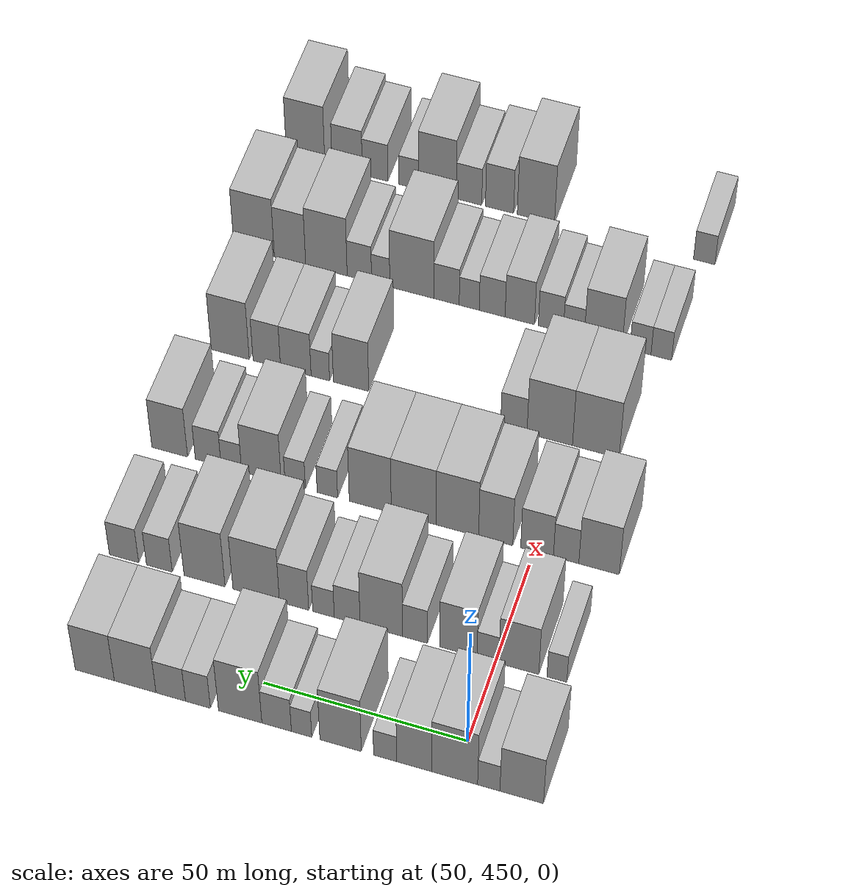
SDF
<sdf version="1.6">
 <world name="default">
  <model name="building_109">
   <static>1</static>
   <pose>50.0000 434.0312 0 0.000000 0.000000 0.000000</pose>
   <link name="link">
    <pose>0 0 10.50 0 0 0</pose>
    <collision name="collision"><geometry><box><size>20.0000 10.4362 21.0000</size></box></geometry></collision>
    <visual name="visual">
     <cast_shadows>0</cast_shadows>
     <geometry><box><size>20.0000 10.4362 21.0000</size></box></geometry>
     <material>
      <script>
       <uri>model://HANNAS_wall/materials/scripts</uri>
       <uri>model://HANNAS_wall/materials/textures</uri>
       <name>vrc/HANNAS_wall</name>
      </script>
     </material>
    </visual>
   </link>
  </model>
  <model name="building_110">
   <static>1</static>
   <pose>50.0000 441.9292 0 0.000000 0.000000 0.000000</pose>
   <link name="link">
    <pose>0 0 6.00 0 0 0</pose>
    <collision name="collision"><geometry><box><size>20.0000 5.3597 12.0000</size></box></geometry></collision>
    <visual name="visual">
     <cast_shadows>0</cast_shadows>
     <geometry><box><size>20.0000 5.3597 12.0000</size></box></geometry>
     <material>
      <script>
       <uri>model://HANNAS_wall/materials/scripts</uri>
       <uri>model://HANNAS_wall/materials/textures</uri>
       <name>vrc/HANNAS_wall</name>
      </script>
     </material>
    </visual>
   </link>
  </model>
  <model name="building_111">
   <static>1</static>
   <pose>50.0000 450.1732 0 0.000000 0.000000 0.000000</pose>
   <link name="link">
    <pose>0 0 12.00 0 0 0</pose>
    <collision name="collision"><geometry><box><size>20.0000 11.1282 24.0000</size></box></geometry></collision>
    <visual name="visual">
     <cast_shadows>0</cast_shadows>
     <geometry><box><size>20.0000 11.1282 24.0000</size></box></geometry>
     <material>
      <script>
       <uri>model://HANNAS_wall/materials/scripts</uri>
       <uri>model://HANNAS_wall/materials/textures</uri>
       <name>vrc/HANNAS_wall</name>
      </script>
     </material>
    </visual>
   </link>
  </model>
  <model name="building_112">
   <static>1</static>
   <pose>50.0000 459.9587 0 0.000000 0.000000 0.000000</pose>
   <link name="link">
    <pose>0 0 10.50 0 0 0</pose>
    <collision name="collision"><geometry><box><size>20.0000 8.4429 21.0000</size></box></geometry></collision>
    <visual name="visual">
     <cast_shadows>0</cast_shadows>
     <geometry><box><size>20.0000 8.4429 21.0000</size></box></geometry>
     <material>
      <script>
       <uri>model://HANNAS_wall/materials/scripts</uri>
       <uri>model://HANNAS_wall/materials/textures</uri>
       <name>vrc/HANNAS_wall</name>
      </script>
     </material>
    </visual>
   </link>
  </model>
  <model name="building_113">
   <static>1</static>
   <pose>50.0000 466.9734 0 0.000000 0.000000 0.000000</pose>
   <link name="link">
    <pose>0 0 6.00 0 0 0</pose>
    <collision name="collision"><geometry><box><size>20.0000 5.5864 12.0000</size></box></geometry></collision>
    <visual name="visual">
     <cast_shadows>0</cast_shadows>
     <geometry><box><size>20.0000 5.5864 12.0000</size></box></geometry>
     <material>
      <script>
       <uri>model://HANNAS_wall/materials/scripts</uri>
       <uri>model://HANNAS_wall/materials/textures</uri>
       <name>vrc/HANNAS_wall</name>
      </script>
     </material>
    </visual>
   </link>
  </model>
  <model name="building_114">
   <static>1</static>
   <pose>50.0000 477.8164 0 0.000000 0.000000 0.000000</pose>
   <link name="link">
    <pose>0 0 12.00 0 0 0</pose>
    <collision name="collision"><geometry><box><size>20.0000 10.0997 24.0000</size></box></geometry></collision>
    <visual name="visual">
     <cast_shadows>0</cast_shadows>
     <geometry><box><size>20.0000 10.0997 24.0000</size></box></geometry>
     <material>
      <script>
       <uri>model://HANNAS_wall/materials/scripts</uri>
       <uri>model://HANNAS_wall/materials/textures</uri>
       <name>vrc/HANNAS_wall</name>
      </script>
     </material>
    </visual>
   </link>
  </model>
  <model name="building_115">
   <static>1</static>
   <pose>50.0000 487.3598 0 0.000000 0.000000 0.000000</pose>
   <link name="link">
    <pose>0 0 6.00 0 0 0</pose>
    <collision name="collision"><geometry><box><size>20.0000 4.9869 12.0000</size></box></geometry></collision>
    <visual name="visual">
     <cast_shadows>0</cast_shadows>
     <geometry><box><size>20.0000 4.9869 12.0000</size></box></geometry>
     <material>
      <script>
       <uri>model://HANNAS_wall/materials/scripts</uri>
       <uri>model://HANNAS_wall/materials/textures</uri>
       <name>vrc/HANNAS_wall</name>
      </script>
     </material>
    </visual>
   </link>
  </model>
  <model name="building_116">
   <static>1</static>
   <pose>50.0000 493.4855 0 0.000000 0.000000 0.000000</pose>
   <link name="link">
    <pose>0 0 7.50 0 0 0</pose>
    <collision name="collision"><geometry><box><size>20.0000 7.2645 15.0000</size></box></geometry></collision>
    <visual name="visual">
     <cast_shadows>0</cast_shadows>
     <geometry><box><size>20.0000 7.2645 15.0000</size></box></geometry>
     <material>
      <script>
       <uri>model://HANNAS_wall/materials/scripts</uri>
       <uri>model://HANNAS_wall/materials/textures</uri>
       <name>vrc/HANNAS_wall</name>
      </script>
     </material>
    </visual>
   </link>
  </model>
  <model name="building_117">
   <static>1</static>
   <pose>50.0000 502.4679 0 0.000000 0.000000 0.000000</pose>
   <link name="link">
    <pose>0 0 12.00 0 0 0</pose>
    <collision name="collision"><geometry><box><size>20.0000 10.7004 24.0000</size></box></geometry></collision>
    <visual name="visual">
     <cast_shadows>0</cast_shadows>
     <geometry><box><size>20.0000 10.7004 24.0000</size></box></geometry>
     <material>
      <script>
       <uri>model://HANNAS_wall/materials/scripts</uri>
       <uri>model://HANNAS_wall/materials/textures</uri>
       <name>vrc/HANNAS_wall</name>
      </script>
     </material>
    </visual>
   </link>
  </model>
  <model name="building_118">
   <static>1</static>
   <pose>50.0000 512.9124 0 0.000000 0.000000 0.000000</pose>
   <link name="link">
    <pose>0 0 7.50 0 0 0</pose>
    <collision name="collision"><geometry><box><size>20.0000 6.1886 15.0000</size></box></geometry></collision>
    <visual name="visual">
     <cast_shadows>0</cast_shadows>
     <geometry><box><size>20.0000 6.1886 15.0000</size></box></geometry>
     <material>
      <script>
       <uri>model://HANNAS_wall/materials/scripts</uri>
       <uri>model://HANNAS_wall/materials/textures</uri>
       <name>vrc/HANNAS_wall</name>
      </script>
     </material>
    </visual>
   </link>
  </model>
  <model name="building_119">
   <static>1</static>
   <pose>50.0000 519.6752 0 0.000000 0.000000 0.000000</pose>
   <link name="link">
    <pose>0 0 7.50 0 0 0</pose>
    <collision name="collision"><geometry><box><size>20.0000 7.3370 15.0000</size></box></geometry></collision>
    <visual name="visual">
     <cast_shadows>0</cast_shadows>
     <geometry><box><size>20.0000 7.3370 15.0000</size></box></geometry>
     <material>
      <script>
       <uri>model://HANNAS_wall/materials/scripts</uri>
       <uri>model://HANNAS_wall/materials/textures</uri>
       <name>vrc/HANNAS_wall</name>
      </script>
     </material>
    </visual>
   </link>
  </model>
  <model name="building_120">
   <static>1</static>
   <pose>50.0000 528.5425 0 0.000000 0.000000 0.000000</pose>
   <link name="link">
    <pose>0 0 10.50 0 0 0</pose>
    <collision name="collision"><geometry><box><size>20.0000 10.3977 21.0000</size></box></geometry></collision>
    <visual name="visual">
     <cast_shadows>0</cast_shadows>
     <geometry><box><size>20.0000 10.3977 21.0000</size></box></geometry>
     <material>
      <script>
       <uri>model://HANNAS_wall/materials/scripts</uri>
       <uri>model://HANNAS_wall/materials/textures</uri>
       <name>vrc/HANNAS_wall</name>
      </script>
     </material>
    </visual>
   </link>
  </model>
  <model name="building_121">
   <static>1</static>
   <pose>50.0000 538.6369 0 0.000000 0.000000 0.000000</pose>
   <link name="link">
    <pose>0 0 10.50 0 0 0</pose>
    <collision name="collision"><geometry><box><size>20.0000 9.7912 21.0000</size></box></geometry></collision>
    <visual name="visual">
     <cast_shadows>0</cast_shadows>
     <geometry><box><size>20.0000 9.7912 21.0000</size></box></geometry>
     <material>
      <script>
       <uri>model://HANNAS_wall/materials/scripts</uri>
       <uri>model://HANNAS_wall/materials/textures</uri>
       <name>vrc/HANNAS_wall</name>
      </script>
     </material>
    </visual>
   </link>
  </model>
  <model name="building_230">
   <static>1</static>
   <pose>82.0000 435.0658 0 0.000000 0.000000 0.000000</pose>
   <link name="link">
    <pose>0 0 6.00 0 0 0</pose>
    <collision name="collision"><geometry><box><size>20.0000 4.8496 12.0000</size></box></geometry></collision>
    <visual name="visual">
     <cast_shadows>0</cast_shadows>
     <geometry><box><size>20.0000 4.8496 12.0000</size></box></geometry>
     <material>
      <script>
       <uri>model://HANNAS_wall/materials/scripts</uri>
       <uri>model://HANNAS_wall/materials/textures</uri>
       <name>vrc/HANNAS_wall</name>
      </script>
     </material>
    </visual>
   </link>
  </model>
  <model name="building_231">
   <static>1</static>
   <pose>82.0000 444.4033 0 0.000000 0.000000 0.000000</pose>
   <link name="link">
    <pose>0 0 10.50 0 0 0</pose>
    <collision name="collision"><geometry><box><size>20.0000 9.8254 21.0000</size></box></geometry></collision>
    <visual name="visual">
     <cast_shadows>0</cast_shadows>
     <geometry><box><size>20.0000 9.8254 21.0000</size></box></geometry>
     <material>
      <script>
       <uri>model://HANNAS_wall/materials/scripts</uri>
       <uri>model://HANNAS_wall/materials/textures</uri>
       <name>vrc/HANNAS_wall</name>
      </script>
     </material>
    </visual>
   </link>
  </model>
  <model name="building_232">
   <static>1</static>
   <pose>82.0000 452.0021 0 0.000000 0.000000 0.000000</pose>
   <link name="link">
    <pose>0 0 6.00 0 0 0</pose>
    <collision name="collision"><geometry><box><size>20.0000 5.3723 12.0000</size></box></geometry></collision>
    <visual name="visual">
     <cast_shadows>0</cast_shadows>
     <geometry><box><size>20.0000 5.3723 12.0000</size></box></geometry>
     <material>
      <script>
       <uri>model://HANNAS_wall/materials/scripts</uri>
       <uri>model://HANNAS_wall/materials/textures</uri>
       <name>vrc/HANNAS_wall</name>
      </script>
     </material>
    </visual>
   </link>
  </model>
  <model name="building_233">
   <static>1</static>
   <pose>82.0000 459.3094 0 0.000000 0.000000 0.000000</pose>
   <link name="link">
    <pose>0 0 10.50 0 0 0</pose>
    <collision name="collision"><geometry><box><size>20.0000 9.2423 21.0000</size></box></geometry></collision>
    <visual name="visual">
     <cast_shadows>0</cast_shadows>
     <geometry><box><size>20.0000 9.2423 21.0000</size></box></geometry>
     <material>
      <script>
       <uri>model://HANNAS_wall/materials/scripts</uri>
       <uri>model://HANNAS_wall/materials/textures</uri>
       <name>vrc/HANNAS_wall</name>
      </script>
     </material>
    </visual>
   </link>
  </model>
  <model name="building_234">
   <static>1</static>
   <pose>82.0000 470.0294 0 0.000000 0.000000 0.000000</pose>
   <link name="link">
    <pose>0 0 7.50 0 0 0</pose>
    <collision name="collision"><geometry><box><size>20.0000 6.1978 15.0000</size></box></geometry></collision>
    <visual name="visual">
     <cast_shadows>0</cast_shadows>
     <geometry><box><size>20.0000 6.1978 15.0000</size></box></geometry>
     <material>
      <script>
       <uri>model://HANNAS_wall/materials/scripts</uri>
       <uri>model://HANNAS_wall/materials/textures</uri>
       <name>vrc/HANNAS_wall</name>
      </script>
     </material>
    </visual>
   </link>
  </model>
  <model name="building_235">
   <static>1</static>
   <pose>82.0000 478.4088 0 0.000000 0.000000 0.000000</pose>
   <link name="link">
    <pose>0 0 12.00 0 0 0</pose>
    <collision name="collision"><geometry><box><size>20.0000 10.5609 24.0000</size></box></geometry></collision>
    <visual name="visual">
     <cast_shadows>0</cast_shadows>
     <geometry><box><size>20.0000 10.5609 24.0000</size></box></geometry>
     <material>
      <script>
       <uri>model://HANNAS_wall/materials/scripts</uri>
       <uri>model://HANNAS_wall/materials/textures</uri>
       <name>vrc/HANNAS_wall</name>
      </script>
     </material>
    </visual>
   </link>
  </model>
  <model name="building_236">
   <static>1</static>
   <pose>82.0000 486.9160 0 0.000000 0.000000 0.000000</pose>
   <link name="link">
    <pose>0 0 7.50 0 0 0</pose>
    <collision name="collision"><geometry><box><size>20.0000 6.4536 15.0000</size></box></geometry></collision>
    <visual name="visual">
     <cast_shadows>0</cast_shadows>
     <geometry><box><size>20.0000 6.4536 15.0000</size></box></geometry>
     <material>
      <script>
       <uri>model://HANNAS_wall/materials/scripts</uri>
       <uri>model://HANNAS_wall/materials/textures</uri>
       <name>vrc/HANNAS_wall</name>
      </script>
     </material>
    </visual>
   </link>
  </model>
  <model name="building_237">
   <static>1</static>
   <pose>82.0000 492.8396 0 0.000000 0.000000 0.000000</pose>
   <link name="link">
    <pose>0 0 6.00 0 0 0</pose>
    <collision name="collision"><geometry><box><size>20.0000 5.3937 12.0000</size></box></geometry></collision>
    <visual name="visual">
     <cast_shadows>0</cast_shadows>
     <geometry><box><size>20.0000 5.3937 12.0000</size></box></geometry>
     <material>
      <script>
       <uri>model://HANNAS_wall/materials/scripts</uri>
       <uri>model://HANNAS_wall/materials/textures</uri>
       <name>vrc/HANNAS_wall</name>
      </script>
     </material>
    </visual>
   </link>
  </model>
  <model name="building_238">
   <static>1</static>
   <pose>82.0000 500.2205 0 0.000000 0.000000 0.000000</pose>
   <link name="link">
    <pose>0 0 9.00 0 0 0</pose>
    <collision name="collision"><geometry><box><size>20.0000 7.3681 18.0000</size></box></geometry></collision>
    <visual name="visual">
     <cast_shadows>0</cast_shadows>
     <geometry><box><size>20.0000 7.3681 18.0000</size></box></geometry>
     <material>
      <script>
       <uri>model://HANNAS_wall/materials/scripts</uri>
       <uri>model://HANNAS_wall/materials/textures</uri>
       <name>vrc/HANNAS_wall</name>
      </script>
     </material>
    </visual>
   </link>
  </model>
  <model name="building_239">
   <static>1</static>
   <pose>82.0000 509.7785 0 0.000000 0.000000 0.000000</pose>
   <link name="link">
    <pose>0 0 12.00 0 0 0</pose>
    <collision name="collision"><geometry><box><size>20.0000 11.7478 24.0000</size></box></geometry></collision>
    <visual name="visual">
     <cast_shadows>0</cast_shadows>
     <geometry><box><size>20.0000 11.7478 24.0000</size></box></geometry>
     <material>
      <script>
       <uri>model://HANNAS_wall/materials/scripts</uri>
       <uri>model://HANNAS_wall/materials/textures</uri>
       <name>vrc/HANNAS_wall</name>
      </script>
     </material>
    </visual>
   </link>
  </model>
  <model name="building_240">
   <static>1</static>
   <pose>82.0000 522.8578 0 0.000000 0.000000 0.000000</pose>
   <link name="link">
    <pose>0 0 12.00 0 0 0</pose>
    <collision name="collision"><geometry><box><size>20.0000 10.4108 24.0000</size></box></geometry></collision>
    <visual name="visual">
     <cast_shadows>0</cast_shadows>
     <geometry><box><size>20.0000 10.4108 24.0000</size></box></geometry>
     <material>
      <script>
       <uri>model://HANNAS_wall/materials/scripts</uri>
       <uri>model://HANNAS_wall/materials/textures</uri>
       <name>vrc/HANNAS_wall</name>
      </script>
     </material>
    </visual>
   </link>
  </model>
  <model name="building_241">
   <static>1</static>
   <pose>82.0000 534.3569 0 0.000000 0.000000 0.000000</pose>
   <link name="link">
    <pose>0 0 7.50 0 0 0</pose>
    <collision name="collision"><geometry><box><size>20.0000 6.5874 15.0000</size></box></geometry></collision>
    <visual name="visual">
     <cast_shadows>0</cast_shadows>
     <geometry><box><size>20.0000 6.5874 15.0000</size></box></geometry>
     <material>
      <script>
       <uri>model://HANNAS_wall/materials/scripts</uri>
       <uri>model://HANNAS_wall/materials/textures</uri>
       <name>vrc/HANNAS_wall</name>
      </script>
     </material>
    </visual>
   </link>
  </model>
  <model name="building_242">
   <static>1</static>
   <pose>82.0000 543.3954 0 0.000000 0.000000 0.000000</pose>
   <link name="link">
    <pose>0 0 7.50 0 0 0</pose>
    <collision name="collision"><geometry><box><size>20.0000 7.4895 15.0000</size></box></geometry></collision>
    <visual name="visual">
     <cast_shadows>0</cast_shadows>
     <geometry><box><size>20.0000 7.4895 15.0000</size></box></geometry>
     <material>
      <script>
       <uri>model://HANNAS_wall/materials/scripts</uri>
       <uri>model://HANNAS_wall/materials/textures</uri>
       <name>vrc/HANNAS_wall</name>
      </script>
     </material>
    </visual>
   </link>
  </model>
  <model name="building_350">
   <static>1</static>
   <pose>114.0000 433.9907 0 0.000000 0.000000 0.000000</pose>
   <link name="link">
    <pose>0 0 10.50 0 0 0</pose>
    <collision name="collision"><geometry><box><size>20.0000 10.0980 21.0000</size></box></geometry></collision>
    <visual name="visual">
     <cast_shadows>0</cast_shadows>
     <geometry><box><size>20.0000 10.0980 21.0000</size></box></geometry>
     <material>
      <script>
       <uri>model://HANNAS_wall/materials/scripts</uri>
       <uri>model://HANNAS_wall/materials/textures</uri>
       <name>vrc/HANNAS_wall</name>
      </script>
     </material>
    </visual>
   </link>
  </model>
  <model name="building_351">
   <static>1</static>
   <pose>114.0000 442.2140 0 0.000000 0.000000 0.000000</pose>
   <link name="link">
    <pose>0 0 7.50 0 0 0</pose>
    <collision name="collision"><geometry><box><size>20.0000 6.3486 15.0000</size></box></geometry></collision>
    <visual name="visual">
     <cast_shadows>0</cast_shadows>
     <geometry><box><size>20.0000 6.3486 15.0000</size></box></geometry>
     <material>
      <script>
       <uri>model://HANNAS_wall/materials/scripts</uri>
       <uri>model://HANNAS_wall/materials/textures</uri>
       <name>vrc/HANNAS_wall</name>
      </script>
     </material>
    </visual>
   </link>
  </model>
  <model name="building_352">
   <static>1</static>
   <pose>114.0000 449.4916 0 0.000000 0.000000 0.000000</pose>
   <link name="link">
    <pose>0 0 9.00 0 0 0</pose>
    <collision name="collision"><geometry><box><size>20.0000 8.2066 18.0000</size></box></geometry></collision>
    <visual name="visual">
     <cast_shadows>0</cast_shadows>
     <geometry><box><size>20.0000 8.2066 18.0000</size></box></geometry>
     <material>
      <script>
       <uri>model://HANNAS_wall/materials/scripts</uri>
       <uri>model://HANNAS_wall/materials/textures</uri>
       <name>vrc/HANNAS_wall</name>
      </script>
     </material>
    </visual>
   </link>
  </model>
  <model name="building_353">
   <static>1</static>
   <pose>114.0000 459.8980 0 0.000000 0.000000 0.000000</pose>
   <link name="link">
    <pose>0 0 10.50 0 0 0</pose>
    <collision name="collision"><geometry><box><size>20.0000 8.6062 21.0000</size></box></geometry></collision>
    <visual name="visual">
     <cast_shadows>0</cast_shadows>
     <geometry><box><size>20.0000 8.6062 21.0000</size></box></geometry>
     <material>
      <script>
       <uri>model://HANNAS_wall/materials/scripts</uri>
       <uri>model://HANNAS_wall/materials/textures</uri>
       <name>vrc/HANNAS_wall</name>
      </script>
     </material>
    </visual>
   </link>
  </model>
  <model name="building_354">
   <static>1</static>
   <pose>114.0000 469.5733 0 0.000000 0.000000 0.000000</pose>
   <link name="link">
    <pose>0 0 12.00 0 0 0</pose>
    <collision name="collision"><geometry><box><size>20.0000 10.7445 24.0000</size></box></geometry></collision>
    <visual name="visual">
     <cast_shadows>0</cast_shadows>
     <geometry><box><size>20.0000 10.7445 24.0000</size></box></geometry>
     <material>
      <script>
       <uri>model://HANNAS_wall/materials/scripts</uri>
       <uri>model://HANNAS_wall/materials/textures</uri>
       <name>vrc/HANNAS_wall</name>
      </script>
     </material>
    </visual>
   </link>
  </model>
  <model name="building_355">
   <static>1</static>
   <pose>114.0000 480.6497 0 0.000000 0.000000 0.000000</pose>
   <link name="link">
    <pose>0 0 12.00 0 0 0</pose>
    <collision name="collision"><geometry><box><size>20.0000 11.4082 24.0000</size></box></geometry></collision>
    <visual name="visual">
     <cast_shadows>0</cast_shadows>
     <geometry><box><size>20.0000 11.4082 24.0000</size></box></geometry>
     <material>
      <script>
       <uri>model://HANNAS_wall/materials/scripts</uri>
       <uri>model://HANNAS_wall/materials/textures</uri>
       <name>vrc/HANNAS_wall</name>
      </script>
     </material>
    </visual>
   </link>
  </model>
  <model name="building_356">
   <static>1</static>
   <pose>114.0000 491.7112 0 0.000000 0.000000 0.000000</pose>
   <link name="link">
    <pose>0 0 12.00 0 0 0</pose>
    <collision name="collision"><geometry><box><size>20.0000 10.7149 24.0000</size></box></geometry></collision>
    <visual name="visual">
     <cast_shadows>0</cast_shadows>
     <geometry><box><size>20.0000 10.7149 24.0000</size></box></geometry>
     <material>
      <script>
       <uri>model://HANNAS_wall/materials/scripts</uri>
       <uri>model://HANNAS_wall/materials/textures</uri>
       <name>vrc/HANNAS_wall</name>
      </script>
     </material>
    </visual>
   </link>
  </model>
  <model name="building_357">
   <static>1</static>
   <pose>114.0000 502.6955 0 0.000000 0.000000 0.000000</pose>
   <link name="link">
    <pose>0 0 6.00 0 0 0</pose>
    <collision name="collision"><geometry><box><size>20.0000 5.2536 12.0000</size></box></geometry></collision>
    <visual name="visual">
     <cast_shadows>0</cast_shadows>
     <geometry><box><size>20.0000 5.2536 12.0000</size></box></geometry>
     <material>
      <script>
       <uri>model://HANNAS_wall/materials/scripts</uri>
       <uri>model://HANNAS_wall/materials/textures</uri>
       <name>vrc/HANNAS_wall</name>
      </script>
     </material>
    </visual>
   </link>
  </model>
  <model name="building_358">
   <static>1</static>
   <pose>114.0000 510.9509 0 0.000000 0.000000 0.000000</pose>
   <link name="link">
    <pose>0 0 6.00 0 0 0</pose>
    <collision name="collision"><geometry><box><size>20.0000 5.2572 12.0000</size></box></geometry></collision>
    <visual name="visual">
     <cast_shadows>0</cast_shadows>
     <geometry><box><size>20.0000 5.2572 12.0000</size></box></geometry>
     <material>
      <script>
       <uri>model://HANNAS_wall/materials/scripts</uri>
       <uri>model://HANNAS_wall/materials/textures</uri>
       <name>vrc/HANNAS_wall</name>
      </script>
     </material>
    </visual>
   </link>
  </model>
  <model name="building_359">
   <static>1</static>
   <pose>114.0000 519.6884 0 0.000000 0.000000 0.000000</pose>
   <link name="link">
    <pose>0 0 10.50 0 0 0</pose>
    <collision name="collision"><geometry><box><size>20.0000 10.2178 21.0000</size></box></geometry></collision>
    <visual name="visual">
     <cast_shadows>0</cast_shadows>
     <geometry><box><size>20.0000 10.2178 21.0000</size></box></geometry>
     <material>
      <script>
       <uri>model://HANNAS_wall/materials/scripts</uri>
       <uri>model://HANNAS_wall/materials/textures</uri>
       <name>vrc/HANNAS_wall</name>
      </script>
     </material>
    </visual>
   </link>
  </model>
  <model name="building_360">
   <static>1</static>
   <pose>114.0000 527.4653 0 0.000000 0.000000 0.000000</pose>
   <link name="link">
    <pose>0 0 6.00 0 0 0</pose>
    <collision name="collision"><geometry><box><size>20.0000 5.3360 12.0000</size></box></geometry></collision>
    <visual name="visual">
     <cast_shadows>0</cast_shadows>
     <geometry><box><size>20.0000 5.3360 12.0000</size></box></geometry>
     <material>
      <script>
       <uri>model://HANNAS_wall/materials/scripts</uri>
       <uri>model://HANNAS_wall/materials/textures</uri>
       <name>vrc/HANNAS_wall</name>
      </script>
     </material>
    </visual>
   </link>
  </model>
  <model name="building_361">
   <static>1</static>
   <pose>114.0000 533.4882 0 0.000000 0.000000 0.000000</pose>
   <link name="link">
    <pose>0 0 7.50 0 0 0</pose>
    <collision name="collision"><geometry><box><size>20.0000 6.7097 15.0000</size></box></geometry></collision>
    <visual name="visual">
     <cast_shadows>0</cast_shadows>
     <geometry><box><size>20.0000 6.7097 15.0000</size></box></geometry>
     <material>
      <script>
       <uri>model://HANNAS_wall/materials/scripts</uri>
       <uri>model://HANNAS_wall/materials/textures</uri>
       <name>vrc/HANNAS_wall</name>
      </script>
     </material>
    </visual>
   </link>
  </model>
  <model name="building_362">
   <static>1</static>
   <pose>114.0000 543.4986 0 0.000000 0.000000 0.000000</pose>
   <link name="link">
    <pose>0 0 10.50 0 0 0</pose>
    <collision name="collision"><geometry><box><size>20.0000 9.3111 21.0000</size></box></geometry></collision>
    <visual name="visual">
     <cast_shadows>0</cast_shadows>
     <geometry><box><size>20.0000 9.3111 21.0000</size></box></geometry>
     <material>
      <script>
       <uri>model://HANNAS_wall/materials/scripts</uri>
       <uri>model://HANNAS_wall/materials/textures</uri>
       <name>vrc/HANNAS_wall</name>
      </script>
     </material>
    </visual>
   </link>
  </model>
  <model name="building_473">
   <static>1</static>
   <pose>146.0000 444.0313 0 0.000000 0.000000 0.000000</pose>
   <link name="link">
    <pose>0 0 12.00 0 0 0</pose>
    <collision name="collision"><geometry><box><size>20.0000 11.9031 24.0000</size></box></geometry></collision>
    <visual name="visual">
     <cast_shadows>0</cast_shadows>
     <geometry><box><size>20.0000 11.9031 24.0000</size></box></geometry>
     <material>
      <script>
       <uri>model://HANNAS_wall/materials/scripts</uri>
       <uri>model://HANNAS_wall/materials/textures</uri>
       <name>vrc/HANNAS_wall</name>
      </script>
     </material>
    </visual>
   </link>
  </model>
  <model name="building_474">
   <static>1</static>
   <pose>146.0000 455.8129 0 0.000000 0.000000 0.000000</pose>
   <link name="link">
    <pose>0 0 12.00 0 0 0</pose>
    <collision name="collision"><geometry><box><size>20.0000 11.6602 24.0000</size></box></geometry></collision>
    <visual name="visual">
     <cast_shadows>0</cast_shadows>
     <geometry><box><size>20.0000 11.6602 24.0000</size></box></geometry>
     <material>
      <script>
       <uri>model://HANNAS_wall/materials/scripts</uri>
       <uri>model://HANNAS_wall/materials/textures</uri>
       <name>vrc/HANNAS_wall</name>
      </script>
     </material>
    </visual>
   </link>
  </model>
  <model name="building_475">
   <static>1</static>
   <pose>146.0000 465.0338 0 0.000000 0.000000 0.000000</pose>
   <link name="link">
    <pose>0 0 7.50 0 0 0</pose>
    <collision name="collision"><geometry><box><size>20.0000 6.7815 15.0000</size></box></geometry></collision>
    <visual name="visual">
     <cast_shadows>0</cast_shadows>
     <geometry><box><size>20.0000 6.7815 15.0000</size></box></geometry>
     <material>
      <script>
       <uri>model://HANNAS_wall/materials/scripts</uri>
       <uri>model://HANNAS_wall/materials/textures</uri>
       <name>vrc/HANNAS_wall</name>
      </script>
     </material>
    </visual>
   </link>
  </model>
  <model name="building_476">
   <static>1</static>
   <pose>146.0000 507.3091 0 0.000000 0.000000 0.000000</pose>
   <link name="link">
    <pose>0 0 10.50 0 0 0</pose>
    <collision name="collision"><geometry><box><size>20.0000 9.2564 21.0000</size></box></geometry></collision>
    <visual name="visual">
     <cast_shadows>0</cast_shadows>
     <geometry><box><size>20.0000 9.2564 21.0000</size></box></geometry>
     <material>
      <script>
       <uri>model://HANNAS_wall/materials/scripts</uri>
       <uri>model://HANNAS_wall/materials/textures</uri>
       <name>vrc/HANNAS_wall</name>
      </script>
     </material>
    </visual>
   </link>
  </model>
  <model name="building_477">
   <static>1</static>
   <pose>146.0000 515.3660 0 0.000000 0.000000 0.000000</pose>
   <link name="link">
    <pose>0 0 6.00 0 0 0</pose>
    <collision name="collision"><geometry><box><size>20.0000 4.8572 12.0000</size></box></geometry></collision>
    <visual name="visual">
     <cast_shadows>0</cast_shadows>
     <geometry><box><size>20.0000 4.8572 12.0000</size></box></geometry>
     <material>
      <script>
       <uri>model://HANNAS_wall/materials/scripts</uri>
       <uri>model://HANNAS_wall/materials/textures</uri>
       <name>vrc/HANNAS_wall</name>
      </script>
     </material>
    </visual>
   </link>
  </model>
  <model name="building_478">
   <static>1</static>
   <pose>146.0000 521.8255 0 0.000000 0.000000 0.000000</pose>
   <link name="link">
    <pose>0 0 9.00 0 0 0</pose>
    <collision name="collision"><geometry><box><size>20.0000 8.0619 18.0000</size></box></geometry></collision>
    <visual name="visual">
     <cast_shadows>0</cast_shadows>
     <geometry><box><size>20.0000 8.0619 18.0000</size></box></geometry>
     <material>
      <script>
       <uri>model://HANNAS_wall/materials/scripts</uri>
       <uri>model://HANNAS_wall/materials/textures</uri>
       <name>vrc/HANNAS_wall</name>
      </script>
     </material>
    </visual>
   </link>
  </model>
  <model name="building_479">
   <static>1</static>
   <pose>146.0000 529.4907 0 0.000000 0.000000 0.000000</pose>
   <link name="link">
    <pose>0 0 9.00 0 0 0</pose>
    <collision name="collision"><geometry><box><size>20.0000 7.2684 18.0000</size></box></geometry></collision>
    <visual name="visual">
     <cast_shadows>0</cast_shadows>
     <geometry><box><size>20.0000 7.2684 18.0000</size></box></geometry>
     <material>
      <script>
       <uri>model://HANNAS_wall/materials/scripts</uri>
       <uri>model://HANNAS_wall/materials/textures</uri>
       <name>vrc/HANNAS_wall</name>
      </script>
     </material>
    </visual>
   </link>
  </model>
  <model name="building_480">
   <static>1</static>
   <pose>146.0000 539.1761 0 0.000000 0.000000 0.000000</pose>
   <link name="link">
    <pose>0 0 12.00 0 0 0</pose>
    <collision name="collision"><geometry><box><size>20.0000 10.1025 24.0000</size></box></geometry></collision>
    <visual name="visual">
     <cast_shadows>0</cast_shadows>
     <geometry><box><size>20.0000 10.1025 24.0000</size></box></geometry>
     <material>
      <script>
       <uri>model://HANNAS_wall/materials/scripts</uri>
       <uri>model://HANNAS_wall/materials/textures</uri>
       <name>vrc/HANNAS_wall</name>
      </script>
     </material>
    </visual>
   </link>
  </model>
  <model name="building_587">
   <static>1</static>
   <pose>178.0000 436.2139 0 0.000000 0.000000 0.000000</pose>
   <link name="link">
    <pose>0 0 6.00 0 0 0</pose>
    <collision name="collision"><geometry><box><size>20.0000 5.3442 12.0000</size></box></geometry></collision>
    <visual name="visual">
     <cast_shadows>0</cast_shadows>
     <geometry><box><size>20.0000 5.3442 12.0000</size></box></geometry>
     <material>
      <script>
       <uri>model://HANNAS_wall/materials/scripts</uri>
       <uri>model://HANNAS_wall/materials/textures</uri>
       <name>vrc/HANNAS_wall</name>
      </script>
     </material>
    </visual>
   </link>
  </model>
  <model name="building_588">
   <static>1</static>
   <pose>178.0000 441.6324 0 0.000000 0.000000 0.000000</pose>
   <link name="link">
    <pose>0 0 6.00 0 0 0</pose>
    <collision name="collision"><geometry><box><size>20.0000 5.4929 12.0000</size></box></geometry></collision>
    <visual name="visual">
     <cast_shadows>0</cast_shadows>
     <geometry><box><size>20.0000 5.4929 12.0000</size></box></geometry>
     <material>
      <script>
       <uri>model://HANNAS_wall/materials/scripts</uri>
       <uri>model://HANNAS_wall/materials/textures</uri>
       <name>vrc/HANNAS_wall</name>
      </script>
     </material>
    </visual>
   </link>
  </model>
  <model name="building_589">
   <static>1</static>
   <pose>178.0000 451.3171 0 0.000000 0.000000 0.000000</pose>
   <link name="link">
    <pose>0 0 10.50 0 0 0</pose>
    <collision name="collision"><geometry><box><size>20.0000 9.8763 21.0000</size></box></geometry></collision>
    <visual name="visual">
     <cast_shadows>0</cast_shadows>
     <geometry><box><size>20.0000 9.8763 21.0000</size></box></geometry>
     <material>
      <script>
       <uri>model://HANNAS_wall/materials/scripts</uri>
       <uri>model://HANNAS_wall/materials/textures</uri>
       <name>vrc/HANNAS_wall</name>
      </script>
     </material>
    </visual>
   </link>
  </model>
  <model name="building_590">
   <static>1</static>
   <pose>178.0000 458.9966 0 0.000000 0.000000 0.000000</pose>
   <link name="link">
    <pose>0 0 6.00 0 0 0</pose>
    <collision name="collision"><geometry><box><size>20.0000 5.4828 12.0000</size></box></geometry></collision>
    <visual name="visual">
     <cast_shadows>0</cast_shadows>
     <geometry><box><size>20.0000 5.4828 12.0000</size></box></geometry>
     <material>
      <script>
       <uri>model://HANNAS_wall/materials/scripts</uri>
       <uri>model://HANNAS_wall/materials/textures</uri>
       <name>vrc/HANNAS_wall</name>
      </script>
     </material>
    </visual>
   </link>
  </model>
  <model name="building_591">
   <static>1</static>
   <pose>178.0000 465.0153 0 0.000000 0.000000 0.000000</pose>
   <link name="link">
    <pose>0 0 7.50 0 0 0</pose>
    <collision name="collision"><geometry><box><size>20.0000 6.5546 15.0000</size></box></geometry></collision>
    <visual name="visual">
     <cast_shadows>0</cast_shadows>
     <geometry><box><size>20.0000 6.5546 15.0000</size></box></geometry>
     <material>
      <script>
       <uri>model://HANNAS_wall/materials/scripts</uri>
       <uri>model://HANNAS_wall/materials/textures</uri>
       <name>vrc/HANNAS_wall</name>
      </script>
     </material>
    </visual>
   </link>
  </model>
  <model name="building_592">
   <static>1</static>
   <pose>178.0000 473.1618 0 0.000000 0.000000 0.000000</pose>
   <link name="link">
    <pose>0 0 9.00 0 0 0</pose>
    <collision name="collision"><geometry><box><size>20.0000 7.7383 18.0000</size></box></geometry></collision>
    <visual name="visual">
     <cast_shadows>0</cast_shadows>
     <geometry><box><size>20.0000 7.7383 18.0000</size></box></geometry>
     <material>
      <script>
       <uri>model://HANNAS_wall/materials/scripts</uri>
       <uri>model://HANNAS_wall/materials/textures</uri>
       <name>vrc/HANNAS_wall</name>
      </script>
     </material>
    </visual>
   </link>
  </model>
  <model name="building_593">
   <static>1</static>
   <pose>178.0000 480.4470 0 0.000000 0.000000 0.000000</pose>
   <link name="link">
    <pose>0 0 7.50 0 0 0</pose>
    <collision name="collision"><geometry><box><size>20.0000 6.8322 15.0000</size></box></geometry></collision>
    <visual name="visual">
     <cast_shadows>0</cast_shadows>
     <geometry><box><size>20.0000 6.8322 15.0000</size></box></geometry>
     <material>
      <script>
       <uri>model://HANNAS_wall/materials/scripts</uri>
       <uri>model://HANNAS_wall/materials/textures</uri>
       <name>vrc/HANNAS_wall</name>
      </script>
     </material>
    </visual>
   </link>
  </model>
  <model name="building_594">
   <static>1</static>
   <pose>178.0000 486.5168 0 0.000000 0.000000 0.000000</pose>
   <link name="link">
    <pose>0 0 6.00 0 0 0</pose>
    <collision name="collision"><geometry><box><size>20.0000 5.3074 12.0000</size></box></geometry></collision>
    <visual name="visual">
     <cast_shadows>0</cast_shadows>
     <geometry><box><size>20.0000 5.3074 12.0000</size></box></geometry>
     <material>
      <script>
       <uri>model://HANNAS_wall/materials/scripts</uri>
       <uri>model://HANNAS_wall/materials/textures</uri>
       <name>vrc/HANNAS_wall</name>
      </script>
     </material>
    </visual>
   </link>
  </model>
  <model name="building_595">
   <static>1</static>
   <pose>178.0000 492.5471 0 0.000000 0.000000 0.000000</pose>
   <link name="link">
    <pose>0 0 7.50 0 0 0</pose>
    <collision name="collision"><geometry><box><size>20.0000 6.7532 15.0000</size></box></geometry></collision>
    <visual name="visual">
     <cast_shadows>0</cast_shadows>
     <geometry><box><size>20.0000 6.7532 15.0000</size></box></geometry>
     <material>
      <script>
       <uri>model://HANNAS_wall/materials/scripts</uri>
       <uri>model://HANNAS_wall/materials/textures</uri>
       <name>vrc/HANNAS_wall</name>
      </script>
     </material>
    </visual>
   </link>
  </model>
  <model name="building_596">
   <static>1</static>
   <pose>178.0000 501.7751 0 0.000000 0.000000 0.000000</pose>
   <link name="link">
    <pose>0 0 12.00 0 0 0</pose>
    <collision name="collision"><geometry><box><size>20.0000 11.7027 24.0000</size></box></geometry></collision>
    <visual name="visual">
     <cast_shadows>0</cast_shadows>
     <geometry><box><size>20.0000 11.7027 24.0000</size></box></geometry>
     <material>
      <script>
       <uri>model://HANNAS_wall/materials/scripts</uri>
       <uri>model://HANNAS_wall/materials/textures</uri>
       <name>vrc/HANNAS_wall</name>
      </script>
     </material>
    </visual>
   </link>
  </model>
  <model name="building_597">
   <static>1</static>
   <pose>178.0000 510.0636 0 0.000000 0.000000 0.000000</pose>
   <link name="link">
    <pose>0 0 6.00 0 0 0</pose>
    <collision name="collision"><geometry><box><size>20.0000 4.8743 12.0000</size></box></geometry></collision>
    <visual name="visual">
     <cast_shadows>0</cast_shadows>
     <geometry><box><size>20.0000 4.8743 12.0000</size></box></geometry>
     <material>
      <script>
       <uri>model://HANNAS_wall/materials/scripts</uri>
       <uri>model://HANNAS_wall/materials/textures</uri>
       <name>vrc/HANNAS_wall</name>
      </script>
     </material>
    </visual>
   </link>
  </model>
  <model name="building_598">
   <static>1</static>
   <pose>178.0000 515.7668 0 0.000000 0.000000 0.000000</pose>
   <link name="link">
    <pose>0 0 7.50 0 0 0</pose>
    <collision name="collision"><geometry><box><size>20.0000 6.5322 15.0000</size></box></geometry></collision>
    <visual name="visual">
     <cast_shadows>0</cast_shadows>
     <geometry><box><size>20.0000 6.5322 15.0000</size></box></geometry>
     <material>
      <script>
       <uri>model://HANNAS_wall/materials/scripts</uri>
       <uri>model://HANNAS_wall/materials/textures</uri>
       <name>vrc/HANNAS_wall</name>
      </script>
     </material>
    </visual>
   </link>
  </model>
  <model name="building_599">
   <static>1</static>
   <pose>178.0000 524.6072 0 0.000000 0.000000 0.000000</pose>
   <link name="link">
    <pose>0 0 12.00 0 0 0</pose>
    <collision name="collision"><geometry><box><size>20.0000 11.1485 24.0000</size></box></geometry></collision>
    <visual name="visual">
     <cast_shadows>0</cast_shadows>
     <geometry><box><size>20.0000 11.1485 24.0000</size></box></geometry>
     <material>
      <script>
       <uri>model://HANNAS_wall/materials/scripts</uri>
       <uri>model://HANNAS_wall/materials/textures</uri>
       <name>vrc/HANNAS_wall</name>
      </script>
     </material>
    </visual>
   </link>
  </model>
  <model name="building_600">
   <static>1</static>
   <pose>178.0000 534.4153 0 0.000000 0.000000 0.000000</pose>
   <link name="link">
    <pose>0 0 10.50 0 0 0</pose>
    <collision name="collision"><geometry><box><size>20.0000 8.4676 21.0000</size></box></geometry></collision>
    <visual name="visual">
     <cast_shadows>0</cast_shadows>
     <geometry><box><size>20.0000 8.4676 21.0000</size></box></geometry>
     <material>
      <script>
       <uri>model://HANNAS_wall/materials/scripts</uri>
       <uri>model://HANNAS_wall/materials/textures</uri>
       <name>vrc/HANNAS_wall</name>
      </script>
     </material>
    </visual>
   </link>
  </model>
  <model name="building_601">
   <static>1</static>
   <pose>178.0000 544.1198 0 0.000000 0.000000 0.000000</pose>
   <link name="link">
    <pose>0 0 12.00 0 0 0</pose>
    <collision name="collision"><geometry><box><size>20.0000 10.9415 24.0000</size></box></geometry></collision>
    <visual name="visual">
     <cast_shadows>0</cast_shadows>
     <geometry><box><size>20.0000 10.9415 24.0000</size></box></geometry>
     <material>
      <script>
       <uri>model://HANNAS_wall/materials/scripts</uri>
       <uri>model://HANNAS_wall/materials/textures</uri>
       <name>vrc/HANNAS_wall</name>
      </script>
     </material>
    </visual>
   </link>
  </model>
  <model name="building_708">
   <static>1</static>
   <pose>210.0000 433.6758 0 0.000000 0.000000 0.000000</pose>
   <link name="link">
    <pose>0 0 6.00 0 0 0</pose>
    <collision name="collision"><geometry><box><size>20.0000 5.6551 12.0000</size></box></geometry></collision>
    <visual name="visual">
     <cast_shadows>0</cast_shadows>
     <geometry><box><size>20.0000 5.6551 12.0000</size></box></geometry>
     <material>
      <script>
       <uri>model://HANNAS_wall/materials/scripts</uri>
       <uri>model://HANNAS_wall/materials/textures</uri>
       <name>vrc/HANNAS_wall</name>
      </script>
     </material>
    </visual>
   </link>
  </model>
  <model name="building_709">
   <static>1</static>
   <pose>210.0000 478.5096 0 0.000000 0.000000 0.000000</pose>
   <link name="link">
    <pose>0 0 12.00 0 0 0</pose>
    <collision name="collision"><geometry><box><size>20.0000 10.0042 24.0000</size></box></geometry></collision>
    <visual name="visual">
     <cast_shadows>0</cast_shadows>
     <geometry><box><size>20.0000 10.0042 24.0000</size></box></geometry>
     <material>
      <script>
       <uri>model://HANNAS_wall/materials/scripts</uri>
       <uri>model://HANNAS_wall/materials/textures</uri>
       <name>vrc/HANNAS_wall</name>
      </script>
     </material>
    </visual>
   </link>
  </model>
  <model name="building_710">
   <static>1</static>
   <pose>210.0000 488.3093 0 0.000000 0.000000 0.000000</pose>
   <link name="link">
    <pose>0 0 9.00 0 0 0</pose>
    <collision name="collision"><geometry><box><size>20.0000 7.5952 18.0000</size></box></geometry></collision>
    <visual name="visual">
     <cast_shadows>0</cast_shadows>
     <geometry><box><size>20.0000 7.5952 18.0000</size></box></geometry>
     <material>
      <script>
       <uri>model://HANNAS_wall/materials/scripts</uri>
       <uri>model://HANNAS_wall/materials/textures</uri>
       <name>vrc/HANNAS_wall</name>
      </script>
     </material>
    </visual>
   </link>
  </model>
  <model name="building_711">
   <static>1</static>
   <pose>210.0000 496.5488 0 0.000000 0.000000 0.000000</pose>
   <link name="link">
    <pose>0 0 7.50 0 0 0</pose>
    <collision name="collision"><geometry><box><size>20.0000 6.8839 15.0000</size></box></geometry></collision>
    <visual name="visual">
     <cast_shadows>0</cast_shadows>
     <geometry><box><size>20.0000 6.8839 15.0000</size></box></geometry>
     <material>
      <script>
       <uri>model://HANNAS_wall/materials/scripts</uri>
       <uri>model://HANNAS_wall/materials/textures</uri>
       <name>vrc/HANNAS_wall</name>
      </script>
     </material>
    </visual>
   </link>
  </model>
  <model name="building_712">
   <static>1</static>
   <pose>210.0000 505.1493 0 0.000000 0.000000 0.000000</pose>
   <link name="link">
    <pose>0 0 12.00 0 0 0</pose>
    <collision name="collision"><geometry><box><size>20.0000 10.3171 24.0000</size></box></geometry></collision>
    <visual name="visual">
     <cast_shadows>0</cast_shadows>
     <geometry><box><size>20.0000 10.3171 24.0000</size></box></geometry>
     <material>
      <script>
       <uri>model://HANNAS_wall/materials/scripts</uri>
       <uri>model://HANNAS_wall/materials/textures</uri>
       <name>vrc/HANNAS_wall</name>
      </script>
     </material>
    </visual>
   </link>
  </model>
  <model name="building_713">
   <static>1</static>
   <pose>210.0000 512.9580 0 0.000000 0.000000 0.000000</pose>
   <link name="link">
    <pose>0 0 6.00 0 0 0</pose>
    <collision name="collision"><geometry><box><size>20.0000 5.3001 12.0000</size></box></geometry></collision>
    <visual name="visual">
     <cast_shadows>0</cast_shadows>
     <geometry><box><size>20.0000 5.3001 12.0000</size></box></geometry>
     <material>
      <script>
       <uri>model://HANNAS_wall/materials/scripts</uri>
       <uri>model://HANNAS_wall/materials/textures</uri>
       <name>vrc/HANNAS_wall</name>
      </script>
     </material>
    </visual>
   </link>
  </model>
  <model name="building_714">
   <static>1</static>
   <pose>210.0000 522.0984 0 0.000000 0.000000 0.000000</pose>
   <link name="link">
    <pose>0 0 7.50 0 0 0</pose>
    <collision name="collision"><geometry><box><size>20.0000 6.9807 15.0000</size></box></geometry></collision>
    <visual name="visual">
     <cast_shadows>0</cast_shadows>
     <geometry><box><size>20.0000 6.9807 15.0000</size></box></geometry>
     <material>
      <script>
       <uri>model://HANNAS_wall/materials/scripts</uri>
       <uri>model://HANNAS_wall/materials/textures</uri>
       <name>vrc/HANNAS_wall</name>
      </script>
     </material>
    </visual>
   </link>
  </model>
  <model name="building_715">
   <static>1</static>
   <pose>210.0000 529.7262 0 0.000000 0.000000 0.000000</pose>
   <link name="link">
    <pose>0 0 9.00 0 0 0</pose>
    <collision name="collision"><geometry><box><size>20.0000 8.2751 18.0000</size></box></geometry></collision>
    <visual name="visual">
     <cast_shadows>0</cast_shadows>
     <geometry><box><size>20.0000 8.2751 18.0000</size></box></geometry>
     <material>
      <script>
       <uri>model://HANNAS_wall/materials/scripts</uri>
       <uri>model://HANNAS_wall/materials/textures</uri>
       <name>vrc/HANNAS_wall</name>
      </script>
     </material>
    </visual>
   </link>
  </model>
  <model name="building_716">
   <static>1</static>
   <pose>210.0000 541.1496 0 0.000000 0.000000 0.000000</pose>
   <link name="link">
    <pose>0 0 12.00 0 0 0</pose>
    <collision name="collision"><geometry><box><size>20.0000 10.5717 24.0000</size></box></geometry></collision>
    <visual name="visual">
     <cast_shadows>0</cast_shadows>
     <geometry><box><size>20.0000 10.5717 24.0000</size></box></geometry>
     <material>
      <script>
       <uri>model://HANNAS_wall/materials/scripts</uri>
       <uri>model://HANNAS_wall/materials/textures</uri>
       <name>vrc/HANNAS_wall</name>
      </script>
     </material>
    </visual>
   </link>
  </model>
 </world>
</sdf>
